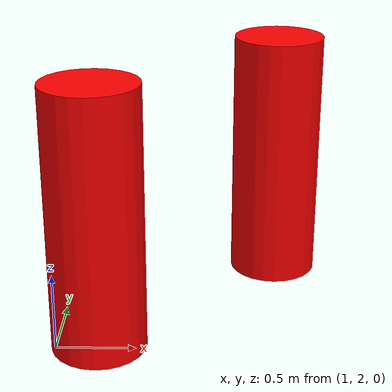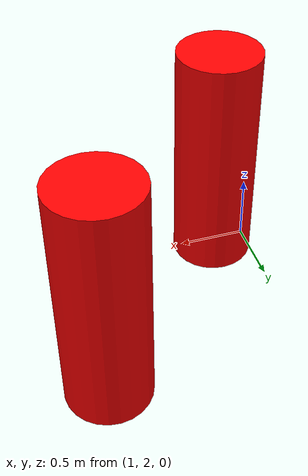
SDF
<sdf version='1.7'>
  <world name='default'>
    <!-- 动态障碍物：参考 generated_env.world 的格式 -->
    <!-- 障碍物1： (2.41, 3.2, 0) 到 (4.5, 0.66, 0)，半径0.2，直径0.4-->
    <model name='dynamic_cylinder_0_0.4_0.4_1.7'>
      <static>true</static>
      <pose>2.41 3.2 0.85 0 0 0</pose> <!-- X, Y, Z, Roll, Pitch, Yaw -->
      <link name='link'>
        <visual name='visual'>
          <geometry>
            <cylinder>
              <radius>0.3</radius>
              <length>1.7</length>
            </cylinder>
          </geometry>
          <material>
            <ambient>1 0 0 1</ambient> <!-- Red color -->
            <diffuse>1 0 0 1</diffuse> <!-- Red color -->
            <specular>0.5 0.5 0.5 1</specular> <!-- Specular highlight -->
          </material>
        </visual>
      </link>
      <plugin name="obstacle_motion" filename="libobstaclePathPlugin.so">
        <orientation>false</orientation>
        <loop>1</loop>
        <velocity>0.4</velocity>
        <path>
          <waypoint>2.41 3.2 0.85</waypoint>
          <waypoint>4.5 0.66 0.85</waypoint>
        </path>
      </plugin>
    </model>

    <!-- 障碍物2： (1.27, 2.05, 0) 到 (3.36, -0.49, 0)，半径0.2，直径0.4 -->
    <model name='dynamic_cylinder_1_0.4_0.4_1.7'>
      <static>true</static>
      <pose>1.27 2.05 0.85 0 0 0</pose> <!-- X, Y, Z, Roll, Pitch, Yaw -->
      <link name='link'>
        <visual name='visual'>
          <geometry>
            <cylinder>
              <radius>0.3</radius>
              <length>1.7</length>
            </cylinder>
          </geometry>
          <material>
            <ambient>1 0 0 1</ambient> <!-- Red color -->
            <diffuse>1 0 0 1</diffuse> <!-- Red color -->
            <specular>0.5 0.5 0.5 1</specular> <!-- Specular highlight -->
          </material>
        </visual>
      </link>
      <plugin name="obstacle_motion" filename="libobstaclePathPlugin.so">
        <orientation>false</orientation>
        <loop>1</loop>
        <velocity>0.4</velocity>
        <path>
          <waypoint>1.27 2.05 0.85</waypoint>
          <waypoint>3.36 -0.49 0.85</waypoint>
        </path>
      </plugin>
    </model>

    <light name='sun' type='directional'>
      <cast_shadows>1</cast_shadows>
      <pose>0 0 10 0 -0 0</pose>
      <diffuse>0.8 0.8 0.8 1</diffuse>
      <specular>0.2 0.2 0.2 1</specular>
      <attenuation>
        <range>1000</range>
        <constant>0.9</constant>
        <linear>0.01</linear>
        <quadratic>0.001</quadratic>
      </attenuation>
      <direction>-0.5 0.1 -0.9</direction>
      <spot>
        <inner_angle>0</inner_angle>
        <outer_angle>0</outer_angle>
        <falloff>0</falloff>
      </spot>
    </light>

    <model name='ground_plane'>
      <static>1</static>
      <link name='link'>
        <collision name='collision'>
          <geometry>
            <plane>
              <normal>0 0 1</normal>
              <size>100 100</size>
            </plane>
          </geometry>
        </collision>
      </link>
    </model>

    <physics type='ode'>
      <max_step_size>0.001</max_step_size>
      <real_time_factor>1</real_time_factor>
      <real_time_update_rate>1000</real_time_update_rate>
    </physics>

    <scene>
      <ambient>0.4 0.4 0.4 1</ambient>
      <background>0.7 0.7 0.7 1</background>
      <shadows>1</shadows>
    </scene>

    <gui fullscreen='0'>
      <camera name='user_camera'>
        <pose>6.39292 -16.0551 24.6198 0 0.913797 2.1162</pose>
        <view_controller>orbit</view_controller>
        <projection_type>perspective</projection_type>
      </camera>
    </gui>
  </world>
</sdf>
